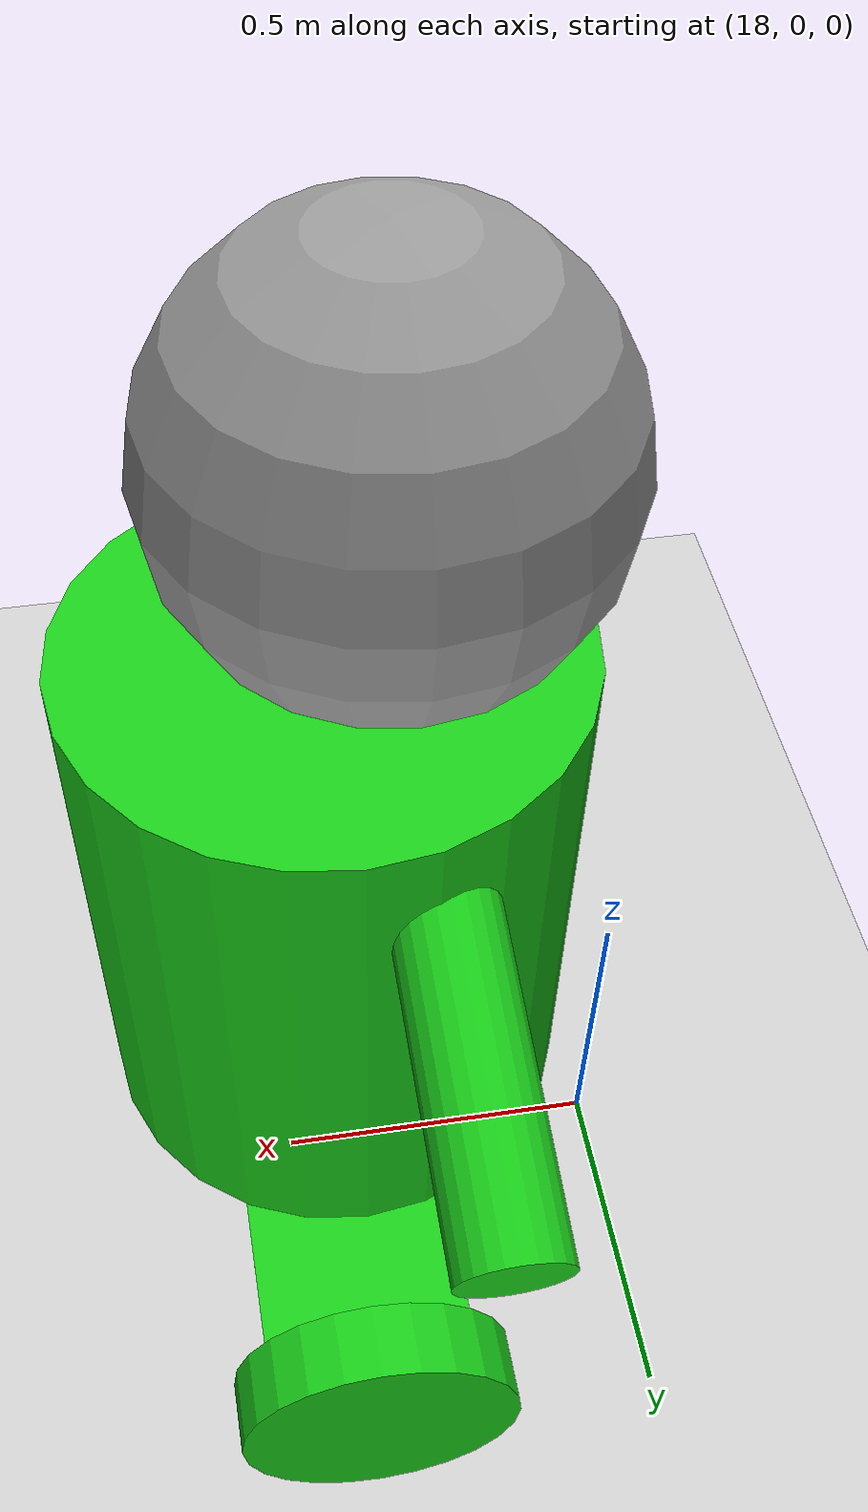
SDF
<sdf version="1.6">
 <world name="default">
  <model name="ground_plane">
   <static>1</static>
   <link name="link">
    <collision name="collision">
     <geometry><plane><normal>0 0 1</normal><size>100 100</size></plane></geometry>
     <surface>
      <contact><collide_bitmask>65535</collide_bitmask></contact>
      <friction><ode><mu>100</mu><mu2>50</mu2></ode></friction>
     </surface>
    </collision>
    <visual name="visual">
     <cast_shadows>0</cast_shadows>
     <geometry><plane><normal>0 0 1</normal><size>100 100</size></plane></geometry>
     <material>
      <script><uri>file://media/materials/scripts/gazebo.material</uri><name>Gazebo/Grey</name></script>
     </material>
    </visual>
   </link>
  </model>
  <model name="model_0_clone">
   <link name="link_0">
    <inertial>
     <mass>1</mass>
     <inertia>
      <ixx>0.166667</ixx>
      <ixy>0</ixy>
      <ixz>0</ixz>
      <iyy>0.166667</iyy>
      <iyz>0</iyz>
      <izz>0.166667</izz>
     </inertia>
    </inertial>
    <pose>0.055686 0.020499 -0.452196 0 -0 0</pose>
    <visual name="visual">
     <geometry><box><size>0.3 1 0.1</size></box></geometry>
     <material>
      <lighting>1</lighting>
      <script><uri>file://media/materials/scripts/gazebo.material</uri><name>Gazebo/Grey</name></script>
      <shader type="pixel"><normal_map>__default__</normal_map></shader>
      <ambient>0.3 0.3 0.3 1</ambient>
      <diffuse>0.1 0.8 0.1 1</diffuse>
      <specular>0.01 0.01 0.01 1</specular>
      <emissive>0 0 0 1</emissive>
     </material>
    </visual>
    <collision name="collision">
     <geometry><box><size>0.3 1 0.1</size></box></geometry>
     <surface>
      <friction>
       <ode><mu>1</mu><mu2>1</mu2><fdir1>0 0 0</fdir1><slip1>0</slip1><slip2>0</slip2></ode>
       <torsional>
        <coefficient>1</coefficient>
        <patch_radius>0</patch_radius>
        <surface_radius>0</surface_radius>
        <use_patch_radius>1</use_patch_radius>
        <ode><slip>0</slip></ode>
       </torsional>
      </friction>
      <bounce><restitution_coefficient>0</restitution_coefficient><threshold>1e+06</threshold></bounce>
      <contact>
       <collide_without_contact>0</collide_without_contact>
       <collide_without_contact_bitmask>1</collide_without_contact_bitmask>
       <collide_bitmask>1</collide_bitmask>
       <ode>
        <soft_cfm>0</soft_cfm>
        <soft_erp>0.2</soft_erp>
        <kp>1e+13</kp>
        <kd>1</kd>
        <max_vel>0.01</max_vel>
        <min_depth>0</min_depth>
       </ode>
       <bullet>
        <split_impulse>1</split_impulse>
        <split_impulse_penetration_threshold>-0.01</split_impulse_penetration_threshold>
        <soft_cfm>0</soft_cfm>
        <soft_erp>0.2</soft_erp>
        <kp>1e+13</kp>
        <kd>1</kd>
       </bullet>
      </contact>
     </surface>
    </collision>
   </link>
   <link name="link_2">
    <inertial>
     <mass>1</mass>
     <inertia><ixx>0.145833</ixx><ixy>0</ixy><ixz>0</ixz><iyy>0.145833</iyy><iyz>0</iyz><izz>0.125</izz></inertia>
     <pose>0 0 0 1.57 -0 0</pose>
    </inertial>
    <pose>0.055686 -0.52966 -0.451499 1.57 -0 0</pose>
    <visual name="visual">
     <geometry><cylinder><radius>0.2</radius><length>0.1</length></cylinder></geometry>
     <material>
      <lighting>1</lighting>
      <script><uri>file://media/materials/scripts/gazebo.material</uri><name>Gazebo/Grey</name></script>
      <shader type="pixel"><normal_map>__default__</normal_map></shader>
      <ambient>0.3 0.3 0.3 1</ambient>
      <diffuse>0.1 0.8 0.1 1</diffuse>
      <specular>0.01 0.01 0.01 1</specular>
      <emissive>0 0 0 1</emissive>
     </material>
    </visual>
    <collision name="collision">
     <geometry><cylinder><radius>0.2</radius><length>0.1</length></cylinder></geometry>
     <surface>
      <friction>
       <ode><mu>1</mu><mu2>1</mu2><fdir1>0 0 0</fdir1><slip1>0</slip1><slip2>0</slip2></ode>
       <torsional>
        <coefficient>1</coefficient>
        <patch_radius>0</patch_radius>
        <surface_radius>0</surface_radius>
        <use_patch_radius>1</use_patch_radius>
        <ode><slip>0</slip></ode>
       </torsional>
      </friction>
      <bounce><restitution_coefficient>0</restitution_coefficient><threshold>1e+06</threshold></bounce>
      <contact>
       <collide_without_contact>0</collide_without_contact>
       <collide_without_contact_bitmask>1</collide_without_contact_bitmask>
       <collide_bitmask>1</collide_bitmask>
       <ode>
        <soft_cfm>0</soft_cfm>
        <soft_erp>0.2</soft_erp>
        <kp>1e+13</kp>
        <kd>1</kd>
        <max_vel>0.01</max_vel>
        <min_depth>0</min_depth>
       </ode>
       <bullet>
        <split_impulse>1</split_impulse>
        <split_impulse_penetration_threshold>-0.01</split_impulse_penetration_threshold>
        <soft_cfm>0</soft_cfm>
        <soft_erp>0.2</soft_erp>
        <kp>1e+13</kp>
        <kd>1</kd>
       </bullet>
      </contact>
     </surface>
    </collision>
   </link>
   <link name="link_2_clone">
    <inertial>
     <mass>1</mass>
     <inertia><ixx>0.145833</ixx><ixy>0</ixy><ixz>0</ixz><iyy>0.145833</iyy><iyz>0</iyz><izz>0.125</izz></inertia>
     <pose>0 0 0 1.57 -0 0</pose>
    </inertial>
    <pose>0.055686 0.570658 -0.451499 1.57 -0 0</pose>
    <visual name="visual">
     <geometry><cylinder><radius>0.2</radius><length>0.1</length></cylinder></geometry>
     <material>
      <lighting>1</lighting>
      <script><uri>file://media/materials/scripts/gazebo.material</uri><name>Gazebo/Grey</name></script>
      <shader type="pixel"><normal_map>__default__</normal_map></shader>
      <ambient>0.3 0.3 0.3 1</ambient>
      <diffuse>0.1 0.8 0.1 1</diffuse>
      <specular>0.01 0.01 0.01 1</specular>
      <emissive>0 0 0 1</emissive>
     </material>
    </visual>
    <collision name="collision">
     <geometry><cylinder><radius>0.2</radius><length>0.1</length></cylinder></geometry>
     <surface>
      <friction>
       <ode><mu>1</mu><mu2>1</mu2><fdir1>0 0 0</fdir1><slip1>0</slip1><slip2>0</slip2></ode>
       <torsional>
        <coefficient>1</coefficient>
        <patch_radius>0</patch_radius>
        <surface_radius>0</surface_radius>
        <use_patch_radius>1</use_patch_radius>
        <ode><slip>0</slip></ode>
       </torsional>
      </friction>
      <bounce><restitution_coefficient>0</restitution_coefficient><threshold>1e+06</threshold></bounce>
      <contact>
       <collide_without_contact>0</collide_without_contact>
       <collide_without_contact_bitmask>1</collide_without_contact_bitmask>
       <collide_bitmask>1</collide_bitmask>
       <ode>
        <soft_cfm>0</soft_cfm>
        <soft_erp>0.2</soft_erp>
        <kp>1e+13</kp>
        <kd>1</kd>
        <max_vel>0.01</max_vel>
        <min_depth>0</min_depth>
       </ode>
       <bullet>
        <split_impulse>1</split_impulse>
        <split_impulse_penetration_threshold>-0.01</split_impulse_penetration_threshold>
        <soft_cfm>0</soft_cfm>
        <soft_erp>0.2</soft_erp>
        <kp>1e+13</kp>
        <kd>1</kd>
       </bullet>
      </contact>
     </surface>
    </collision>
   </link>
   <link name="link_3">
    <inertial>
     <mass>0.381152</mass>
     <inertia>
      <ixx>0.0324431</ixx>
      <ixy>0</ixy>
      <ixz>0</ixz>
      <iyy>0.0324431</iyy>
      <iyz>0</iyz>
      <izz>0.0221347</izz>
     </inertia>
    </inertial>
    <pose>0.031076 -0.00434 0.056769 0 -0 0</pose>
    <visual name="visual">
     <geometry><cylinder><radius>0.340802</radius><length>0.820355</length></cylinder></geometry>
     <material>
      <lighting>1</lighting>
      <script><uri>file://media/materials/scripts/gazebo.material</uri><name>Gazebo/Grey</name></script>
      <shader type="pixel"><normal_map>__default__</normal_map></shader>
      <diffuse>0.1 0.8 0.1 0</diffuse>
      <ambient>0.3 0.3 0.3 1</ambient>
      <specular>0.01 0.01 0.01 1</specular>
      <emissive>0 0 0 1</emissive>
     </material>
    </visual>
    <collision name="collision">
     <geometry><cylinder><radius>0.340802</radius><length>0.820355</length></cylinder></geometry>
     <surface>
      <friction>
       <ode><mu>1</mu><mu2>1</mu2><fdir1>0 0 0</fdir1><slip1>0</slip1><slip2>0</slip2></ode>
       <torsional>
        <coefficient>1</coefficient>
        <patch_radius>0</patch_radius>
        <surface_radius>0</surface_radius>
        <use_patch_radius>1</use_patch_radius>
        <ode><slip>0</slip></ode>
       </torsional>
      </friction>
      <bounce><restitution_coefficient>0</restitution_coefficient><threshold>1e+06</threshold></bounce>
      <contact>
       <collide_without_contact>0</collide_without_contact>
       <collide_without_contact_bitmask>1</collide_without_contact_bitmask>
       <collide_bitmask>1</collide_bitmask>
       <ode>
        <soft_cfm>0</soft_cfm>
        <soft_erp>0.2</soft_erp>
        <kp>1e+13</kp>
        <kd>1</kd>
        <max_vel>0.01</max_vel>
        <min_depth>0</min_depth>
       </ode>
       <bullet>
        <split_impulse>1</split_impulse>
        <split_impulse_penetration_threshold>-0.01</split_impulse_penetration_threshold>
        <soft_cfm>0</soft_cfm>
        <soft_erp>0.2</soft_erp>
        <kp>1e+13</kp>
        <kd>1</kd>
       </bullet>
      </contact>
     </surface>
    </collision>
   </link>
   <link name="link_4">
    <inertial>
     <mass>0.19884</mass>
     <inertia>
      <ixx>0.00677399</ixx>
      <ixy>0</ixy>
      <ixz>0</ixz>
      <iyy>0.00677399</iyy>
      <iyz>0</iyz>
      <izz>0.00677399</izz>
     </inertia>
    </inertial>
    <pose>-0.049504 -0.013475 0.730364 0 -0 0</pose>
    <visual name="visual">
     <geometry><sphere><radius>0.291837</radius></sphere></geometry>
     <material>
      <lighting>1</lighting>
      <script><uri>file://media/materials/scripts/gazebo.material</uri><name>Gazebo/Grey</name></script>
      <shader type="pixel"><normal_map>__default__</normal_map></shader>
      <ambient>0.3 0.3 0.3 1</ambient>
      <diffuse>0.7 0.7 0.7 1</diffuse>
      <specular>0.01 0.01 0.01 1</specular>
      <emissive>0.1 0.8 0.1 1</emissive>
     </material>
    </visual>
    <collision name="collision">
     <geometry><sphere><radius>0.291837</radius></sphere></geometry>
     <surface>
      <friction>
       <ode><mu>1</mu><mu2>1</mu2><fdir1>0 0 0</fdir1><slip1>0</slip1><slip2>0</slip2></ode>
       <torsional>
        <coefficient>1</coefficient>
        <patch_radius>0</patch_radius>
        <surface_radius>0</surface_radius>
        <use_patch_radius>1</use_patch_radius>
        <ode><slip>0</slip></ode>
       </torsional>
      </friction>
      <bounce><restitution_coefficient>0</restitution_coefficient><threshold>1e+06</threshold></bounce>
      <contact>
       <collide_without_contact>0</collide_without_contact>
       <collide_without_contact_bitmask>1</collide_without_contact_bitmask>
       <collide_bitmask>1</collide_bitmask>
       <ode>
        <soft_cfm>0</soft_cfm>
        <soft_erp>0.2</soft_erp>
        <kp>1e+13</kp>
        <kd>1</kd>
        <max_vel>0.01</max_vel>
        <min_depth>0</min_depth>
       </ode>
       <bullet>
        <split_impulse>1</split_impulse>
        <split_impulse_penetration_threshold>-0.01</split_impulse_penetration_threshold>
        <soft_cfm>0</soft_cfm>
        <soft_erp>0.2</soft_erp>
        <kp>1e+13</kp>
        <kd>1</kd>
       </bullet>
      </contact>
     </surface>
    </collision>
   </link>
   <link name="link_5">
    <inertial>
     <mass>0.0103595</mass>
     <inertia>
      <ixx>0.000249</ixx>
      <ixy>0</ixy>
      <ixz>0</ixz>
      <iyy>0.000249</iyy>
      <iyz>0</iyz>
      <izz>2.56e-05</izz>
     </inertia>
    </inertial>
    <pose>-0.079894 -0.509739 0.296414 -1.44968 0 0</pose>
    <visual name="visual">
     <geometry><cylinder><radius>0.0703013</radius><length>0.523072</length></cylinder></geometry>
     <material>
      <lighting>1</lighting>
      <script><uri>file://media/materials/scripts/gazebo.material</uri><name>Gazebo/Grey</name></script>
      <shader type="pixel"><normal_map>__default__</normal_map></shader>
      <diffuse>0.1 0.8 0.1 1</diffuse>
      <ambient>0.3 0.3 0.3 1</ambient>
      <specular>0.01 0.01 0.01 1</specular>
      <emissive>0 0 0 1</emissive>
     </material>
    </visual>
    <collision name="collision">
     <geometry><cylinder><radius>0.070301</radius><length>0.523072</length></cylinder></geometry>
     <surface>
      <friction>
       <ode><mu>1</mu><mu2>1</mu2><fdir1>0 0 0</fdir1><slip1>0</slip1><slip2>0</slip2></ode>
       <torsional>
        <coefficient>1</coefficient>
        <patch_radius>0</patch_radius>
        <surface_radius>0</surface_radius>
        <use_patch_radius>1</use_patch_radius>
        <ode><slip>0</slip></ode>
       </torsional>
      </friction>
      <bounce><restitution_coefficient>0</restitution_coefficient><threshold>1e+06</threshold></bounce>
      <contact>
       <collide_without_contact>0</collide_without_contact>
       <collide_without_contact_bitmask>1</collide_without_contact_bitmask>
       <collide_bitmask>1</collide_bitmask>
       <ode>
        <soft_cfm>0</soft_cfm>
        <soft_erp>0.2</soft_erp>
        <kp>1e+13</kp>
        <kd>1</kd>
        <max_vel>0.01</max_vel>
        <min_depth>0</min_depth>
       </ode>
       <bullet>
        <split_impulse>1</split_impulse>
        <split_impulse_penetration_threshold>-0.01</split_impulse_penetration_threshold>
        <soft_cfm>0</soft_cfm>
        <soft_erp>0.2</soft_erp>
        <kp>1e+13</kp>
        <kd>1</kd>
       </bullet>
      </contact>
     </surface>
    </collision>
   </link>
   <link name="link_5_clone">
    <inertial>
     <mass>0.0103595</mass>
     <inertia>
      <ixx>0.000249</ixx>
      <ixy>0</ixy>
      <ixz>0</ixz>
      <iyy>0.000249</iyy>
      <iyz>0</iyz>
      <izz>2.56e-05</izz>
     </inertia>
    </inertial>
    <pose>-0.068734 0.466057 0.271648 -1.78091 0 0</pose>
    <visual name="visual">
     <geometry><cylinder><radius>0.0703013</radius><length>0.523072</length></cylinder></geometry>
     <material>
      <lighting>1</lighting>
      <script><uri>file://media/materials/scripts/gazebo.material</uri><name>Gazebo/Grey</name></script>
      <shader type="pixel"><normal_map>__default__</normal_map></shader>
      <diffuse>0.1 0.8 0.1 0</diffuse>
      <ambient>0.3 0.3 0.3 1</ambient>
      <specular>0.01 0.01 0.01 1</specular>
      <emissive>0 0 0 1</emissive>
     </material>
    </visual>
    <collision name="collision">
     <geometry><cylinder><radius>0.070301</radius><length>0.523072</length></cylinder></geometry>
     <surface>
      <friction>
       <ode><mu>1</mu><mu2>1</mu2><fdir1>0 0 0</fdir1><slip1>0</slip1><slip2>0</slip2></ode>
       <torsional>
        <coefficient>1</coefficient>
        <patch_radius>0</patch_radius>
        <surface_radius>0</surface_radius>
        <use_patch_radius>1</use_patch_radius>
        <ode><slip>0</slip></ode>
       </torsional>
      </friction>
      <bounce><restitution_coefficient>0</restitution_coefficient><threshold>1e+06</threshold></bounce>
      <contact>
       <collide_without_contact>0</collide_without_contact>
       <collide_without_contact_bitmask>1</collide_without_contact_bitmask>
       <collide_bitmask>1</collide_bitmask>
       <ode>
        <soft_cfm>0</soft_cfm>
        <soft_erp>0.2</soft_erp>
        <kp>1e+13</kp>
        <kd>1</kd>
        <max_vel>0.01</max_vel>
        <min_depth>0</min_depth>
       </ode>
       <bullet>
        <split_impulse>1</split_impulse>
        <split_impulse_penetration_threshold>-0.01</split_impulse_penetration_threshold>
        <soft_cfm>0</soft_cfm>
        <soft_erp>0.2</soft_erp>
        <kp>1e+13</kp>
        <kd>1</kd>
       </bullet>
      </contact>
     </surface>
    </collision>
   </link>
   <joint name="link_0_JOINT_3" type="revolute">
    <parent>link_0</parent>
    <child>link_2</child>
    <axis>
     <xyz>0 0 1</xyz>
     <limit>
      <lower>-1.79769e+308</lower>
      <upper>1.79769e+308</upper>
      <effort>-1</effort>
      <velocity>-1</velocity>
     </limit>
     <dynamics>
      <spring_reference>0</spring_reference>
      <spring_stiffness>0</spring_stiffness>
      <damping>0</damping>
     </dynamics>
     <use_parent_model_frame>0</use_parent_model_frame>
    </axis>
    <physics>
     <ode><limit><cfm>0</cfm><erp>0.2</erp></limit><suspension><cfm>0</cfm><erp>0.2</erp></suspension></ode>
    </physics>
   </joint>
   <joint name="link_0_JOINT_4" type="revolute">
    <parent>link_0</parent>
    <child>link_2_clone</child>
    <axis>
     <xyz>0 0 1</xyz>
     <limit>
      <lower>-1.79769e+308</lower>
      <upper>1.79769e+308</upper>
      <effort>-1</effort>
      <velocity>-1</velocity>
     </limit>
     <dynamics>
      <spring_reference>0</spring_reference>
      <spring_stiffness>0</spring_stiffness>
      <damping>0</damping>
     </dynamics>
     <use_parent_model_frame>0</use_parent_model_frame>
    </axis>
    <physics>
     <ode><limit><cfm>0</cfm><erp>0.2</erp></limit><suspension><cfm>0</cfm><erp>0.2</erp></suspension></ode>
    </physics>
   </joint>
   <static>0</static>
   <pose>18.3841 -0.031354 0.651539 0 -0 0</pose>
  </model>
 </world>
</sdf>
